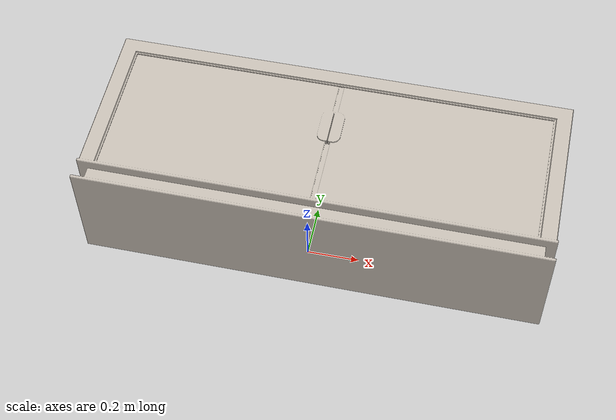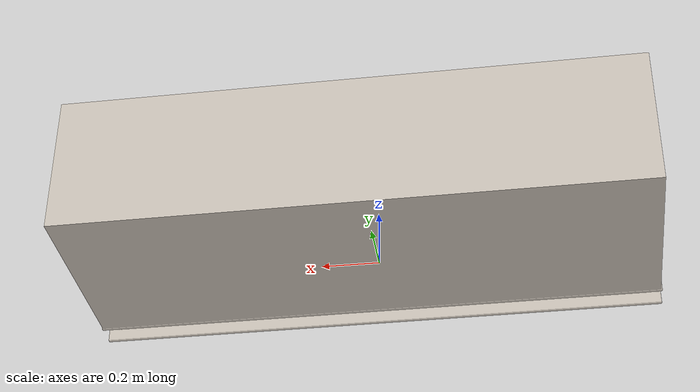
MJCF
<mujoco model="raw_model">
  <default>
    <default class="visual">
      <geom group="2" type="mesh" contype="0" conaffinity="0"/>
    </default>
    <default class="collision">
      <geom group="3" type="mesh"/>
    </default>
  </default>
  <asset>
    <texture type="2d" name="texture" file="texture.png"/>
    <material name="solid_001_wire" texture="texture" specular="0.3333333333333333" shininess="0.5"/>
    <mesh file="raw_model.obj"/>
  </asset>
  <worldbody>
    <body name="raw_model">
      <freejoint/>
      <geom material="solid_001_wire" mesh="raw_model" class="visual"/>
      <geom mesh="raw_model" class="collision"/>
    </body>
  </worldbody>
</mujoco>
